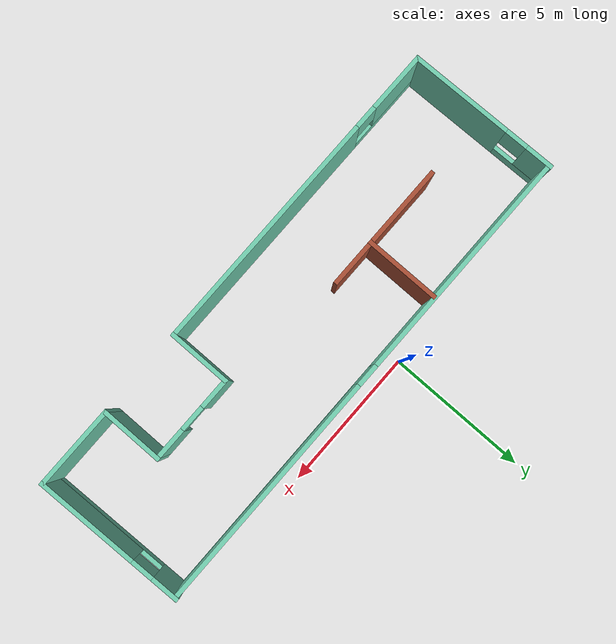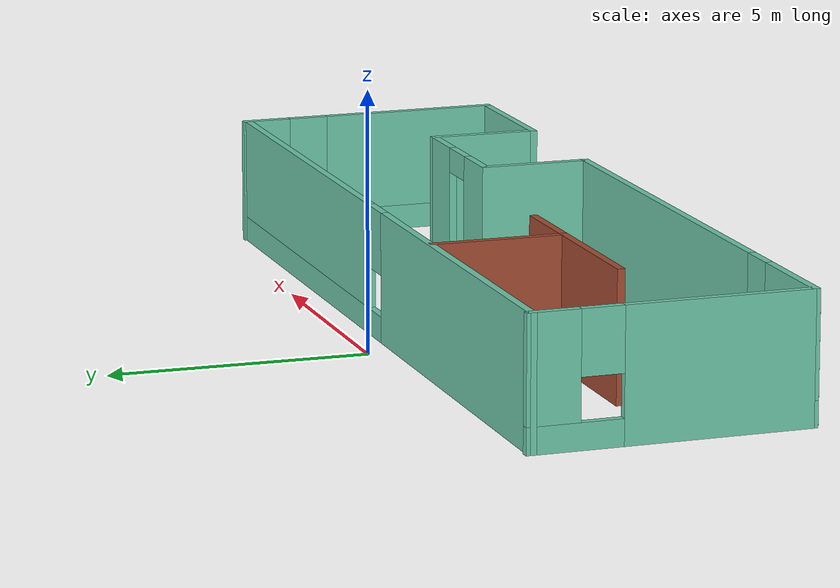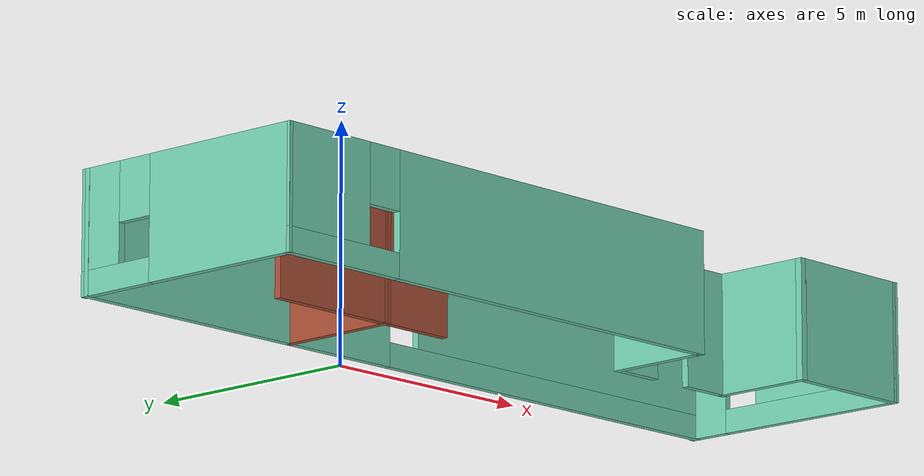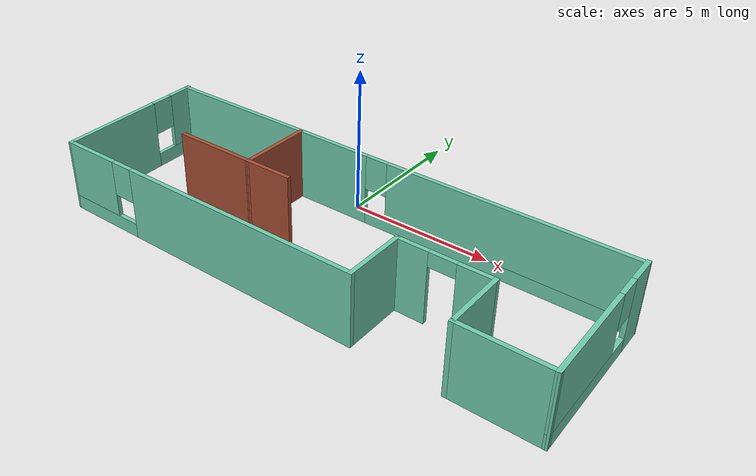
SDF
<?xml version='1.0'?>
<sdf version='1.6'>
  <model name='building'>
    <pose frame=''>1.32922 -3.16347 0 0 -0 0</pose>
    <link name='Wall_0'>
      <pose frame=''>-8.675 0 0 0 -0 1.58982</pose>
      <visual name='Wall_0_Visual_0'>
        <pose frame=''>-0.899544 0 1.25 0 -0 0</pose>
        <geometry>
          <box>
            <size>3.63857 0.15 2.5</size>
          </box>
        </geometry>
        <material>
          <script>
            <uri>file://media/materials/scripts/gazebo.material</uri>
            <name>Gazebo/Grey</name>
          </script>
          <ambient>0.435294 0.796078 0.67451 1</ambient>
        </material>
        <meta>
          <layer>0</layer>
        </meta>
      </visual>
      <collision name='Wall_0_Collision_0'>
        <geometry>
          <box>
            <size>3.63857 0.15 2.5</size>
          </box>
        </geometry>
        <pose frame=''>-0.899544 0 1.25 0 -0 0</pose>
      </collision>
      <visual name='Wall_0_Visual_1'>
        <pose frame=''>1.81929 0 0.25 0 -0 0</pose>
        <geometry>
          <box>
            <size>1.79909 0.15 0.5</size>
          </box>
        </geometry>
        <material>
          <script>
            <uri>file://media/materials/scripts/gazebo.material</uri>
            <name>Gazebo/Grey</name>
          </script>
          <ambient>0.435294 0.796078 0.67451 1</ambient>
        </material>
        <meta>
          <layer>0</layer>
        </meta>
      </visual>
      <collision name='Wall_0_Collision_1'>
        <geometry>
          <box>
            <size>1.79909 0.15 0.5</size>
          </box>
        </geometry>
        <pose frame=''>1.81929 0 0.25 0 -0 0</pose>
      </collision>
      <visual name='Wall_0_Visual_2'>
        <pose frame=''>2.21929 0 1.5 0 -0 0</pose>
        <geometry>
          <box>
            <size>0.999088 0.15 2</size>
          </box>
        </geometry>
        <material>
          <script>
            <uri>file://media/materials/scripts/gazebo.material</uri>
            <name>Gazebo/Grey</name>
          </script>
          <ambient>0.435294 0.796078 0.67451 1</ambient>
        </material>
        <meta>
          <layer>0</layer>
        </meta>
      </visual>
      <collision name='Wall_0_Collision_2'>
        <geometry>
          <box>
            <size>0.999088 0.15 2</size>
          </box>
        </geometry>
        <pose frame=''>2.21929 0 1.5 0 -0 0</pose>
      </collision>
      <visual name='Wall_0_Visual_3'>
        <pose frame=''>1.31974 0 1.9 0 -0 0</pose>
        <geometry>
          <box>
            <size>0.8 0.15 1.2</size>
          </box>
        </geometry>
        <material>
          <script>
            <uri>file://media/materials/scripts/gazebo.material</uri>
            <name>Gazebo/Grey</name>
          </script>
          <ambient>0.435294 0.796078 0.67451 1</ambient>
        </material>
        <meta>
          <layer>0</layer>
        </meta>
      </visual>
      <collision name='Wall_0_Collision_3'>
        <geometry>
          <box>
            <size>0.8 0.15 1.2</size>
          </box>
        </geometry>
        <pose frame=''>1.31974 0 1.9 0 -0 0</pose>
      </collision>
    </link>
    <link name='Wall_1'>
      <pose frame=''>-0.050284 2.60312 0 0 -0 0</pose>
      <visual name='Wall_1_Visual_0'>
        <pose frame=''>-4.63837 0 1.25 0 -0 0</pose>
        <geometry>
          <box>
            <size>8.22327 0.15 2.5</size>
          </box>
        </geometry>
        <material>
          <script>
            <uri>file://media/materials/scripts/gazebo.material</uri>
            <name>Gazebo/Grey</name>
          </script>
          <ambient>0.435294 0.796078 0.67451 1</ambient>
        </material>
        <meta>
          <layer>0</layer>
        </meta>
      </visual>
      <collision name='Wall_1_Collision_0'>
        <geometry>
          <box>
            <size>8.22327 0.15 2.5</size>
          </box>
        </geometry>
        <pose frame=''>-4.63837 0 1.25 0 -0 0</pose>
      </collision>
      <visual name='Wall_1_Visual_1'>
        <pose frame=''>4.11163 0 0.25 0 -0 0</pose>
        <geometry>
          <box>
            <size>9.27673 0.15 0.5</size>
          </box>
        </geometry>
        <material>
          <script>
            <uri>file://media/materials/scripts/gazebo.material</uri>
            <name>Gazebo/Grey</name>
          </script>
          <ambient>0.435294 0.796078 0.67451 1</ambient>
        </material>
        <meta>
          <layer>0</layer>
        </meta>
      </visual>
      <collision name='Wall_1_Collision_1'>
        <geometry>
          <box>
            <size>9.27673 0.15 0.5</size>
          </box>
        </geometry>
        <pose frame=''>4.11163 0 0.25 0 -0 0</pose>
      </collision>
      <visual name='Wall_1_Visual_2'>
        <pose frame=''>4.51163 0 1.5 0 -0 0</pose>
        <geometry>
          <box>
            <size>8.47673 0.15 2</size>
          </box>
        </geometry>
        <material>
          <script>
            <uri>file://media/materials/scripts/gazebo.material</uri>
            <name>Gazebo/Grey</name>
          </script>
          <ambient>0.435294 0.796078 0.67451 1</ambient>
        </material>
        <meta>
          <layer>0</layer>
        </meta>
      </visual>
      <collision name='Wall_1_Collision_2'>
        <geometry>
          <box>
            <size>8.47673 0.15 2</size>
          </box>
        </geometry>
        <pose frame=''>4.51163 0 1.5 0 -0 0</pose>
      </collision>
      <visual name='Wall_1_Visual_3'>
        <pose frame=''>-0.126732 0 1.9 0 -0 0</pose>
        <geometry>
          <box>
            <size>0.8 0.15 1.2</size>
          </box>
        </geometry>
        <material>
          <script>
            <uri>file://media/materials/scripts/gazebo.material</uri>
            <name>Gazebo/Grey</name>
          </script>
          <ambient>0.435294 0.796078 0.67451 1</ambient>
        </material>
        <meta>
          <layer>0</layer>
        </meta>
      </visual>
      <collision name='Wall_1_Collision_3'>
        <geometry>
          <box>
            <size>0.8 0.15 1.2</size>
          </box>
        </geometry>
        <pose frame=''>-0.126732 0 1.9 0 -0 0</pose>
      </collision>
    </link>
    <link name='Wall_10'>
      <collision name='Wall_10_Collision'>
        <geometry>
          <box>
            <size>2.66352 0.15 2.5</size>
          </box>
        </geometry>
        <pose frame=''>0 0 1.25 0 -0 0</pose>
      </collision>
      <visual name='Wall_10_Visual'>
        <pose frame=''>0 0 1.25 0 -0 0</pose>
        <geometry>
          <box>
            <size>2.66352 0.15 2.5</size>
          </box>
        </geometry>
        <material>
          <script>
            <uri>file://media/materials/scripts/gazebo.material</uri>
            <name>Gazebo/Bricks</name>
          </script>
          <ambient>0.435294 0.796078 0.67451 1</ambient>
        </material>
        <meta>
          <layer>0</layer>
        </meta>
      </visual>
      <pose frame=''>-3.31366 1.28919 0 0 0 -1.56994</pose>
    </link>
    <link name='Wall_11'>
      <collision name='Wall_11_Collision'>
        <geometry>
          <box>
            <size>1.75 0.15 2.5</size>
          </box>
        </geometry>
        <pose frame=''>0 0 1.25 0 -0 0</pose>
      </collision>
      <visual name='Wall_11_Visual'>
        <pose frame=''>0 0 1.25 0 -0 0</pose>
        <geometry>
          <box>
            <size>1.75 0.15 2.5</size>
          </box>
        </geometry>
        <material>
          <script>
            <uri>file://media/materials/scripts/gazebo.material</uri>
            <name>Gazebo/Bricks</name>
          </script>
          <ambient>0.435294 0.796078 0.67451 1</ambient>
        </material>
        <meta>
          <layer>0</layer>
        </meta>
      </visual>
      <pose frame=''>-2.51259 0.032427 0 0 -0 0</pose>
    </link>
    <link name='Wall_14'>
      <collision name='Wall_14_Collision'>
        <geometry>
          <box>
            <size>3 0.15 2.5</size>
          </box>
        </geometry>
        <pose frame=''>0 0 1.25 0 -0 0</pose>
      </collision>
      <visual name='Wall_14_Visual'>
        <pose frame=''>0 0 1.25 0 -0 0</pose>
        <geometry>
          <box>
            <size>3 0.15 2.5</size>
          </box>
        </geometry>
        <material>
          <script>
            <uri>file://media/materials/scripts/gazebo.material</uri>
            <name>Gazebo/Bricks</name>
          </script>
          <ambient>0.435294 0.796078 0.67451 1</ambient>
        </material>
        <meta>
          <layer>0</layer>
        </meta>
      </visual>
      <pose frame=''>-4.73759 0.032427 0 0 -0 3.14159</pose>
    </link>
    <link name='Wall_2'>
      <pose frame=''>8.675 0 0 0 0 -1.55178</pose>
      <visual name='Wall_2_Visual_0'>
        <pose frame=''>-2.21959 0 1.25 0 -0 0</pose>
        <geometry>
          <box>
            <size>0.998475 0.15 2.5</size>
          </box>
        </geometry>
        <material>
          <script>
            <uri>file://media/materials/scripts/gazebo.material</uri>
            <name>Gazebo/Grey</name>
          </script>
          <ambient>0.435294 0.796078 0.67451 1</ambient>
        </material>
        <meta>
          <layer>0</layer>
        </meta>
      </visual>
      <collision name='Wall_2_Collision_0'>
        <geometry>
          <box>
            <size>0.998475 0.15 2.5</size>
          </box>
        </geometry>
        <pose frame=''>-2.21959 0 1.25 0 -0 0</pose>
      </collision>
      <visual name='Wall_2_Visual_1'>
        <pose frame=''>0.499237 0 0.25 0 -0 0</pose>
        <geometry>
          <box>
            <size>4.43918 0.15 0.5</size>
          </box>
        </geometry>
        <material>
          <script>
            <uri>file://media/materials/scripts/gazebo.material</uri>
            <name>Gazebo/Grey</name>
          </script>
          <ambient>0.435294 0.796078 0.67451 1</ambient>
        </material>
        <meta>
          <layer>0</layer>
        </meta>
      </visual>
      <collision name='Wall_2_Collision_1'>
        <geometry>
          <box>
            <size>4.43918 0.15 0.5</size>
          </box>
        </geometry>
        <pose frame=''>0.499237 0 0.25 0 -0 0</pose>
      </collision>
      <visual name='Wall_2_Visual_2'>
        <pose frame=''>0.899237 0 1.5 0 -0 0</pose>
        <geometry>
          <box>
            <size>3.63918 0.15 2</size>
          </box>
        </geometry>
        <material>
          <script>
            <uri>file://media/materials/scripts/gazebo.material</uri>
            <name>Gazebo/Grey</name>
          </script>
          <ambient>0.435294 0.796078 0.67451 1</ambient>
        </material>
        <meta>
          <layer>0</layer>
        </meta>
      </visual>
      <collision name='Wall_2_Collision_2'>
        <geometry>
          <box>
            <size>3.63918 0.15 2</size>
          </box>
        </geometry>
        <pose frame=''>0.899237 0 1.5 0 -0 0</pose>
      </collision>
      <visual name='Wall_2_Visual_3'>
        <pose frame=''>-1.32035 0 1.9 0 -0 0</pose>
        <geometry>
          <box>
            <size>0.8 0.15 1.2</size>
          </box>
        </geometry>
        <material>
          <script>
            <uri>file://media/materials/scripts/gazebo.material</uri>
            <name>Gazebo/Grey</name>
          </script>
          <ambient>0.435294 0.796078 0.67451 1</ambient>
        </material>
        <meta>
          <layer>0</layer>
        </meta>
      </visual>
      <collision name='Wall_2_Collision_3'>
        <geometry>
          <box>
            <size>0.8 0.15 1.2</size>
          </box>
        </geometry>
        <pose frame=''>-1.32035 0 1.9 0 -0 0</pose>
      </collision>
    </link>
    <link name='Wall_3'>
      <collision name='Wall_3_Collision'>
        <geometry>
          <box>
            <size>3 0.15 2.5</size>
          </box>
        </geometry>
        <pose frame=''>0 0 1.25 0 -0 0</pose>
      </collision>
      <visual name='Wall_3_Visual'>
        <pose frame=''>0 0 1.25 0 -0 0</pose>
        <geometry>
          <box>
            <size>3 0.15 2.5</size>
          </box>
        </geometry>
        <material>
          <script>
            <uri>file://media/materials/scripts/gazebo.material</uri>
            <name>Gazebo/Grey</name>
          </script>
          <ambient>0.435294 0.796078 0.67451 1</ambient>
        </material>
        <meta>
          <layer>0</layer>
        </meta>
      </visual>
      <pose frame=''>7.30028 -2.64335 0 0 -0 3.14159</pose>
    </link>
    <link name='Wall_4'>
      <collision name='Wall_4_Collision'>
        <geometry>
          <box>
            <size>2.25 0.15 2.5</size>
          </box>
        </geometry>
        <pose frame=''>0 0 1.25 0 -0 0</pose>
      </collision>
      <visual name='Wall_4_Visual'>
        <pose frame=''>0 0 1.25 0 -0 0</pose>
        <geometry>
          <box>
            <size>2.25 0.15 2.5</size>
          </box>
        </geometry>
        <material>
          <script>
            <uri>file://media/materials/scripts/gazebo.material</uri>
            <name>Gazebo/Grey</name>
          </script>
          <ambient>0.435294 0.796078 0.67451 1</ambient>
        </material>
        <meta>
          <layer>0</layer>
        </meta>
      </visual>
      <pose frame=''>5.87528 -1.59335 0 0 -0 1.5708</pose>
    </link>
    <link name='Wall_5'>
      <pose frame=''>4.32528 -0.543351 0 0 -0 3.14159</pose>
      <visual name='Wall_5_Visual_0'>
        <pose frame=''>-1.01896 0 1.25 0 -0 0</pose>
        <geometry>
          <box>
            <size>1.21209 0.15 2.5</size>
          </box>
        </geometry>
        <material>
          <script>
            <uri>file://media/materials/scripts/gazebo.material</uri>
            <name>Gazebo/Grey</name>
          </script>
          <ambient>0.435294 0.796078 0.67451 1</ambient>
        </material>
        <meta>
          <layer>0</layer>
        </meta>
      </visual>
      <collision name='Wall_5_Collision_0'>
        <geometry>
          <box>
            <size>1.21209 0.15 2.5</size>
          </box>
        </geometry>
        <pose frame=''>-1.01896 0 1.25 0 -0 0</pose>
      </collision>
      <visual name='Wall_5_Visual_1'>
        <pose frame=''>1.05604 0 1.25 0 -0 0</pose>
        <geometry>
          <box>
            <size>1.13791 0.15 2.5</size>
          </box>
        </geometry>
        <material>
          <script>
            <uri>file://media/materials/scripts/gazebo.material</uri>
            <name>Gazebo/Grey</name>
          </script>
          <ambient>0.435294 0.796078 0.67451 1</ambient>
        </material>
        <meta>
          <layer>0</layer>
        </meta>
      </visual>
      <collision name='Wall_5_Collision_1'>
        <geometry>
          <box>
            <size>1.13791 0.15 2.5</size>
          </box>
        </geometry>
        <pose frame=''>1.05604 0 1.25 0 -0 0</pose>
      </collision>
      <visual name='Wall_5_Visual_2'>
        <pose frame=''>0.037087 0 2.25 0 -0 0</pose>
        <geometry>
          <box>
            <size>0.9 0.15 0.5</size>
          </box>
        </geometry>
        <material>
          <script>
            <uri>file://media/materials/scripts/gazebo.material</uri>
            <name>Gazebo/Grey</name>
          </script>
          <ambient>0.435294 0.796078 0.67451 1</ambient>
        </material>
        <meta>
          <layer>0</layer>
        </meta>
      </visual>
      <collision name='Wall_5_Collision_2'>
        <geometry>
          <box>
            <size>0.9 0.15 0.5</size>
          </box>
        </geometry>
        <pose frame=''>0.037087 0 2.25 0 -0 0</pose>
      </collision>
    </link>
    <link name='Wall_6'>
      <collision name='Wall_6_Collision'>
        <geometry>
          <box>
            <size>2.25 0.15 2.5</size>
          </box>
        </geometry>
        <pose frame=''>0 0 1.25 0 -0 0</pose>
      </collision>
      <visual name='Wall_6_Visual'>
        <pose frame=''>0 0 1.25 0 -0 0</pose>
        <geometry>
          <box>
            <size>2.25 0.15 2.5</size>
          </box>
        </geometry>
        <material>
          <script>
            <uri>file://media/materials/scripts/gazebo.material</uri>
            <name>Gazebo/Grey</name>
          </script>
          <ambient>0.435294 0.796078 0.67451 1</ambient>
        </material>
        <meta>
          <layer>0</layer>
        </meta>
      </visual>
      <pose frame=''>2.77528 -1.59335 0 0 0 -1.5708</pose>
    </link>
    <link name='Wall_8'>
      <pose frame=''>-2.92472 -2.64335 0 0 -0 3.14159</pose>
      <visual name='Wall_8_Visual_0'>
        <pose frame=''>-1.46443 0 1.25 0 -0 0</pose>
        <geometry>
          <box>
            <size>8.62114 0.15 2.5</size>
          </box>
        </geometry>
        <material>
          <script>
            <uri>file://media/materials/scripts/gazebo.material</uri>
            <name>Gazebo/Grey</name>
          </script>
          <ambient>0.435294 0.796078 0.67451 1</ambient>
        </material>
        <meta>
          <layer>0</layer>
        </meta>
      </visual>
      <collision name='Wall_8_Collision_0'>
        <geometry>
          <box>
            <size>8.62114 0.15 2.5</size>
          </box>
        </geometry>
        <pose frame=''>-1.46443 0 1.25 0 -0 0</pose>
      </collision>
      <visual name='Wall_8_Visual_1'>
        <pose frame=''>4.31057 0 0.25 0 -0 0</pose>
        <geometry>
          <box>
            <size>2.92886 0.15 0.5</size>
          </box>
        </geometry>
        <material>
          <script>
            <uri>file://media/materials/scripts/gazebo.material</uri>
            <name>Gazebo/Grey</name>
          </script>
          <ambient>0.435294 0.796078 0.67451 1</ambient>
        </material>
        <meta>
          <layer>0</layer>
        </meta>
      </visual>
      <collision name='Wall_8_Collision_1'>
        <geometry>
          <box>
            <size>2.92886 0.15 0.5</size>
          </box>
        </geometry>
        <pose frame=''>4.31057 0 0.25 0 -0 0</pose>
      </collision>
      <visual name='Wall_8_Visual_2'>
        <pose frame=''>4.71057 0 1.5 0 -0 0</pose>
        <geometry>
          <box>
            <size>2.12886 0.15 2</size>
          </box>
        </geometry>
        <material>
          <script>
            <uri>file://media/materials/scripts/gazebo.material</uri>
            <name>Gazebo/Grey</name>
          </script>
          <ambient>0.435294 0.796078 0.67451 1</ambient>
        </material>
        <meta>
          <layer>0</layer>
        </meta>
      </visual>
      <collision name='Wall_8_Collision_2'>
        <geometry>
          <box>
            <size>2.12886 0.15 2</size>
          </box>
        </geometry>
        <pose frame=''>4.71057 0 1.5 0 -0 0</pose>
      </collision>
      <visual name='Wall_8_Visual_3'>
        <pose frame=''>3.24614 0 1.9 0 -0 0</pose>
        <geometry>
          <box>
            <size>0.8 0.15 1.2</size>
          </box>
        </geometry>
        <material>
          <script>
            <uri>file://media/materials/scripts/gazebo.material</uri>
            <name>Gazebo/Grey</name>
          </script>
          <ambient>0.435294 0.796078 0.67451 1</ambient>
        </material>
        <meta>
          <layer>0</layer>
        </meta>
      </visual>
      <collision name='Wall_8_Collision_3'>
        <geometry>
          <box>
            <size>0.8 0.15 1.2</size>
          </box>
        </geometry>
        <pose frame=''>3.24614 0 1.9 0 -0 0</pose>
      </collision>
    </link>
    <static>1</static>
  </model>
</sdf>
